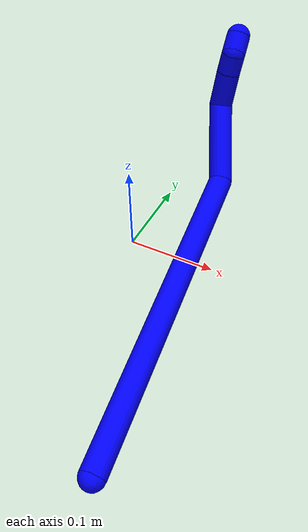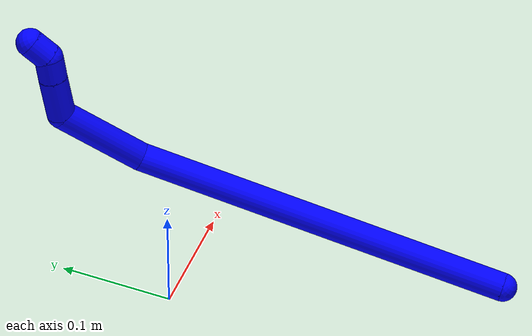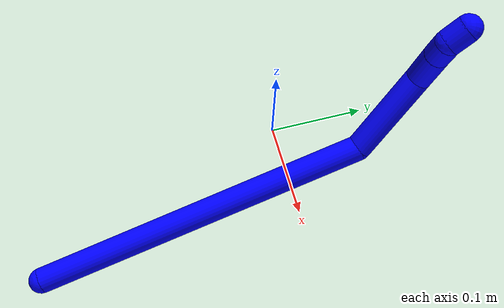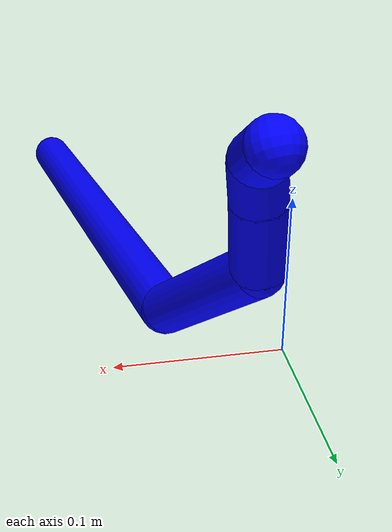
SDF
<sdf version="1.7">
 <world name="default">
  <plugin name="TubeGeneratorPlugin" filename="libtube_generator_plugin.so"/>
  <model name="photoneo_s_sensor">
   <static>1</static>
   <pose>0 0 2 1.57079 1.57079 3.14159</pose>
   <link name="link">
    <inertial><mass>0.1</mass></inertial>
    <sensor name="sensor" type="depth">
     <update_rate>30</update_rate>
     <camera>
      <horizontal_fov>1.22</horizontal_fov>
      <image><width>1920</width><height>1200</height><format>B8G8R8</format></image>
      <clip><near>0.1</near><far>4</far></clip>
      <depth_camera><output>points</output></depth_camera>
     </camera>
     <plugin name="camera_plugin" filename="libgazebo_ros_depth_camera.so">
      <baseline>0.2</baseline>
      <alwaysOn>1</alwaysOn>
      <updateRate>0.0</updateRate>
      <cameraName>camera_ir</cameraName>
      <imageTopicName>/camera/color/image_raw</imageTopicName>
      <cameraInfoTopicName>/camera/color/camera_info</cameraInfoTopicName>
      <depthImageTopicName>/camera/depth/image_raw</depthImageTopicName>
      <depthImageCameraInfoTopicName>/camera/depth/camera_info</depthImageCameraInfoTopicName>
      <pointCloudTopicName>/camera/depth/points</pointCloudTopicName>
      <frameName>fr_optical</frameName>
      <pointCloudCutoff>0.1</pointCloudCutoff>
      <pointCloudCutoffMax>2.0</pointCloudCutoffMax>
      <distortionK1>0</distortionK1>
      <distortionK2>0</distortionK2>
      <distortionK3>0</distortionK3>
      <distortionT1>0</distortionT1>
      <distortionT2>0</distortionT2>
      <CxPrime>0</CxPrime>
      <Cx>0</Cx>
      <Cy>0</Cy>
      <focalLength>0</focalLength>
      <hackBaseline>0</hackBaseline>
     </plugin>
    </sensor>
   </link>
  </model>
  <gravity>0 0 -9.8</gravity>
  <magnetic_field>6e-06 2.3e-05 -4.2e-05</magnetic_field>
  <atmosphere type="adiabatic"/>
  <physics name="default_physics" default="0" type="ode">
   <max_step_size>0.003</max_step_size>
   <real_time_factor>1</real_time_factor>
   <real_time_update_rate>1000</real_time_update_rate>
   <max_contacts>10000</max_contacts>
   <ode>
    <solver>
     <type>quick</type>
     <iters>100</iters>
     <sor>1.3</sor>
     <use_dynamic_moi_rescaling>0</use_dynamic_moi_rescaling>
    </solver>
    <constraints>
     <contact_max_correcting_vel>0</contact_max_correcting_vel>
     <contact_surface_layer>0.001</contact_surface_layer>
     <cfm>0</cfm>
     <erp>0.2</erp>
    </constraints>
   </ode>
  </physics>
  <scene><ambient>0.4 0.4 0.4 1</ambient><background>0.7 0.7 0.7 1</background><shadows>0</shadows></scene>
  <audio><device>default</device></audio>
  <spherical_coordinates>
   <surface_model>EARTH_WGS84</surface_model>
   <latitude_deg>0</latitude_deg>
   <longitude_deg>0</longitude_deg>
   <elevation>0</elevation>
   <heading_deg>0</heading_deg>
  </spherical_coordinates>
  <model name="bin">
   <static>1</static>
   <link name="bottom">
    <collision name="collision-bottom">
     <pose>0 0 -0.01 0 -0 0</pose>
     <geometry><box><size>0.8 0.6 0.02</size></box></geometry>
     <surface>
      <friction><ode><mu>100</mu><mu2>100</mu2></ode></friction>
      <contact><collide_bitmask>65535</collide_bitmask></contact>
     </surface>
    </collision>
   </link>
   <link name="west_wall">
    <collision name="collision-west_wall">
     <pose>-0.41 0 0.1 0 -0 0</pose>
     <geometry><box><size>0.02 0.6 0.2</size></box></geometry>
     <surface>
      <friction><ode><mu>100</mu><mu2>100</mu2></ode></friction>
      <contact><collide_bitmask>65535</collide_bitmask></contact>
     </surface>
    </collision>
   </link>
   <link name="east_wall">
    <collision name="collision-east_wall">
     <pose>0.41 0 0.1 0 -0 0</pose>
     <geometry><box><size>0.02 0.6 0.2</size></box></geometry>
     <surface>
      <friction><ode><mu>100</mu><mu2>100</mu2></ode></friction>
      <contact><collide_bitmask>65535</collide_bitmask></contact>
     </surface>
    </collision>
   </link>
   <link name="south_wall">
    <collision name="collision-south_wall">
     <pose>0 -0.31 0.1 0 -0 0</pose>
     <geometry><box><size>0.8 0.02 0.2</size></box></geometry>
     <surface>
      <friction><ode><mu>100</mu><mu2>100</mu2></ode></friction>
      <contact><collide_bitmask>65535</collide_bitmask></contact>
     </surface>
    </collision>
   </link>
   <link name="north_wall">
    <collision name="collision-north_wall">
     <pose>0 0.31 0.1 0 -0 0</pose>
     <geometry><box><size>0.8 0.02 0.2</size></box></geometry>
     <surface>
      <friction><ode><mu>100</mu><mu2>100</mu2></ode></friction>
      <contact><collide_bitmask>65535</collide_bitmask></contact>
     </surface>
    </collision>
   </link>
  </model>
  <model name="1">
   <static>0</static>
   <link name="1">
    <collision name="collision-cylinder-e_1_1_4">
     <pose>-0.010045 0.137429 -0.09355 -2.16846 -0.060348 0.113995</pose>
     <geometry><cylinder><radius>0.0125</radius><length>0.333103</length></cylinder></geometry>
     <surface>
      <friction><ode><mu>1.16</mu><mu2>1.16</mu2><slip1>0</slip1><slip2>0</slip2></ode></friction>
      <contact><ode><kp>1e+06</kp><kd>1</kd><max_vel>0</max_vel><min_depth>0.001</min_depth></ode></contact>
     </surface>
    </collision>
    <visual name="visual-cylinder-e_1_1_4">
     <pose>-0.010045 0.137429 -0.09355 -2.16846 -0.060348 0.113995</pose>
     <geometry><cylinder><radius>0.0125</radius><length>0.333103</length></cylinder></geometry>
     <material><ambient>0 0 1 1</ambient></material>
    </visual>
    <collision name="collision-cylinder-e_2_4_5">
     <pose>-0.035311 0.315482 -0.190128 -1.6452 -0.35758 0.384575</pose>
     <geometry><cylinder><radius>0.0125</radius><length>0.086972</length></cylinder></geometry>
     <surface>
      <friction><ode><mu>1.16</mu><mu2>1.16</mu2><slip1>0</slip1><slip2>0</slip2></ode></friction>
      <contact><ode><kp>1e+06</kp><kd>1</kd><max_vel>0</max_vel><min_depth>0.001</min_depth></ode></contact>
     </surface>
    </collision>
    <visual name="visual-cylinder-e_2_4_5">
     <pose>-0.035311 0.315482 -0.190128 -1.6452 -0.35758 0.384575</pose>
     <geometry><cylinder><radius>0.0125</radius><length>0.086972</length></cylinder></geometry>
     <material><ambient>0 0 1 1</ambient></material>
    </visual>
    <collision name="collision-cylinder-e_3_5_6">
     <pose>-0.050171 0.37223 -0.18266 -0.9938 0.018695 -0.010138</pose>
     <geometry><cylinder><radius>0.0125</radius><length>0.038488</length></cylinder></geometry>
     <surface>
      <friction><ode><mu>1.16</mu><mu2>1.16</mu2><slip1>0</slip1><slip2>0</slip2></ode></friction>
      <contact><ode><kp>1e+06</kp><kd>1</kd><max_vel>0</max_vel><min_depth>0.001</min_depth></ode></contact>
     </surface>
    </collision>
    <visual name="visual-cylinder-e_3_5_6">
     <pose>-0.050171 0.37223 -0.18266 -0.9938 0.018695 -0.010138</pose>
     <geometry><cylinder><radius>0.0125</radius><length>0.038488</length></cylinder></geometry>
     <material><ambient>0 0 1 1</ambient></material>
    </visual>
    <collision name="collision-cylinder-e_4_6_7">
     <pose>-0.049224 0.39707 -0.166345 -0.982009 0.056036 -0.029967</pose>
     <geometry><cylinder><radius>0.0125</radius><length>0.020989</length></cylinder></geometry>
     <surface>
      <friction><ode><mu>1.16</mu><mu2>1.16</mu2><slip1>0</slip1><slip2>0</slip2></ode></friction>
      <contact><ode><kp>1e+06</kp><kd>1</kd><max_vel>0</max_vel><min_depth>0.001</min_depth></ode></contact>
     </surface>
    </collision>
    <visual name="visual-cylinder-e_4_6_7">
     <pose>-0.049224 0.39707 -0.166345 -0.982009 0.056036 -0.029967</pose>
     <geometry><cylinder><radius>0.0125</radius><length>0.020989</length></cylinder></geometry>
     <material><ambient>0 0 1 1</ambient></material>
    </visual>
    <collision name="collision-cylinder-e_5_7_2">
     <pose>-0.049697 0.41589 -0.161644 -1.68088 -0.103918 0.116011</pose>
     <geometry><cylinder><radius>0.0125</radius><length>0.020448</length></cylinder></geometry>
     <surface>
      <friction><ode><mu>1.16</mu><mu2>1.16</mu2><slip1>0</slip1><slip2>0</slip2></ode></friction>
      <contact><ode><kp>1e+06</kp><kd>1</kd><max_vel>0</max_vel><min_depth>0.001</min_depth></ode></contact>
     </surface>
    </collision>
    <visual name="visual-cylinder-e_5_7_2">
     <pose>-0.049697 0.41589 -0.161644 -1.68088 -0.103918 0.116011</pose>
     <geometry><cylinder><radius>0.0125</radius><length>0.020448</length></cylinder></geometry>
     <material><ambient>0 0 1 1</ambient></material>
    </visual>
    <collision name="collision-sphere-2">
     <pose>-0.050757 0.425998 -0.162761 0 -0 0</pose>
     <geometry><sphere><radius>0.0125</radius></sphere></geometry>
     <surface>
      <friction><ode><mu>1.16</mu><mu2>1.16</mu2><slip1>0</slip1><slip2>0</slip2></ode></friction>
      <contact><ode><kp>1e+06</kp><kd>1</kd><max_vel>0</max_vel><min_depth>0.001</min_depth></ode></contact>
     </surface>
    </collision>
    <visual name="visual-sphere-2">
     <pose>-0.050757 0.425998 -0.162761 0 -0 0</pose>
     <geometry><sphere><radius>0.0125</radius></sphere></geometry>
     <material><ambient>0 0 1 1</ambient></material>
    </visual>
    <collision name="collision-sphere-7">
     <pose>-0.048636 0.405783 -0.160526 0 -0 0</pose>
     <geometry><sphere><radius>0.0125</radius></sphere></geometry>
     <surface>
      <friction><ode><mu>1.16</mu><mu2>1.16</mu2><slip1>0</slip1><slip2>0</slip2></ode></friction>
      <contact><ode><kp>1e+06</kp><kd>1</kd><max_vel>0</max_vel><min_depth>0.001</min_depth></ode></contact>
     </surface>
    </collision>
    <visual name="visual-sphere-7">
     <pose>-0.048636 0.405783 -0.160526 0 -0 0</pose>
     <geometry><sphere><radius>0.0125</radius></sphere></geometry>
     <material><ambient>0 0 1 1</ambient></material>
    </visual>
    <collision name="collision-sphere-6">
     <pose>-0.049812 0.388356 -0.172164 0 -0 0</pose>
     <geometry><sphere><radius>0.0125</radius></sphere></geometry>
     <surface>
      <friction><ode><mu>1.16</mu><mu2>1.16</mu2><slip1>0</slip1><slip2>0</slip2></ode></friction>
      <contact><ode><kp>1e+06</kp><kd>1</kd><max_vel>0</max_vel><min_depth>0.001</min_depth></ode></contact>
     </surface>
    </collision>
    <visual name="visual-sphere-6">
     <pose>-0.049812 0.388356 -0.172164 0 -0 0</pose>
     <geometry><sphere><radius>0.0125</radius></sphere></geometry>
     <material><ambient>0 0 1 1</ambient></material>
    </visual>
    <collision name="collision-sphere-5">
     <pose>-0.050531 0.356104 -0.193156 0 -0 0</pose>
     <geometry><sphere><radius>0.0125</radius></sphere></geometry>
     <surface>
      <friction><ode><mu>1.16</mu><mu2>1.16</mu2><slip1>0</slip1><slip2>0</slip2></ode></friction>
      <contact><ode><kp>1e+06</kp><kd>1</kd><max_vel>0</max_vel><min_depth>0.001</min_depth></ode></contact>
     </surface>
    </collision>
    <visual name="visual-sphere-5">
     <pose>-0.050531 0.356104 -0.193156 0 -0 0</pose>
     <geometry><sphere><radius>0.0125</radius></sphere></geometry>
     <material><ambient>0 0 1 1</ambient></material>
    </visual>
    <collision name="collision-sphere-1">
     <geometry><sphere><radius>0.0125</radius></sphere></geometry>
     <surface>
      <friction><ode><mu>1.16</mu><mu2>1.16</mu2><slip1>0</slip1><slip2>0</slip2></ode></friction>
      <contact><ode><kp>1e+06</kp><kd>1</kd><max_vel>0</max_vel><min_depth>0.001</min_depth></ode></contact>
     </surface>
    </collision>
    <visual name="visual-sphere-1">
     <geometry><sphere><radius>0.0125</radius></sphere></geometry>
     <material><ambient>0 0 1 1</ambient></material>
    </visual>
    <collision name="collision-sphere-4">
     <pose>-0.02009 0.274859 -0.1871 0 -0 0</pose>
     <geometry><sphere><radius>0.0125</radius></sphere></geometry>
     <surface>
      <friction><ode><mu>1.16</mu><mu2>1.16</mu2><slip1>0</slip1><slip2>0</slip2></ode></friction>
      <contact><ode><kp>1e+06</kp><kd>1</kd><max_vel>0</max_vel><min_depth>0.001</min_depth></ode></contact>
     </surface>
    </collision>
    <visual name="visual-sphere-4">
     <pose>-0.02009 0.274859 -0.1871 0 -0 0</pose>
     <geometry><sphere><radius>0.0125</radius></sphere></geometry>
     <material><ambient>0 0 1 1</ambient></material>
    </visual>
    <inertial>
     <pose>-0.020795 0.208762 -0.123049 0 -0 0</pose>
     <mass>0.5</mass>
     <inertia>
      <ixx>0.003495</ixx>
      <ixy>0</ixy>
      <ixz>0</ixz>
      <iyy>-0.001299</iyy>
      <iyz>0</iyz>
      <izz>-0.00242</izz>
     </inertia>
    </inertial>
   </link>
   <pose>0.109075 -0.266069 0.011757 0.791671 0.081193 0.040239</pose>
  </model>
 </world>
</sdf>
